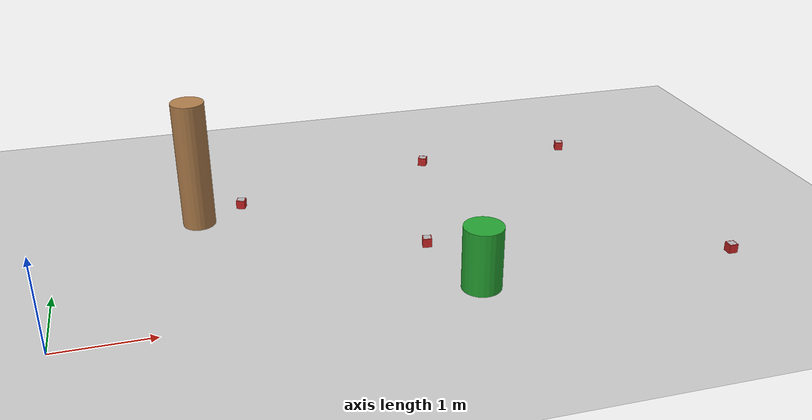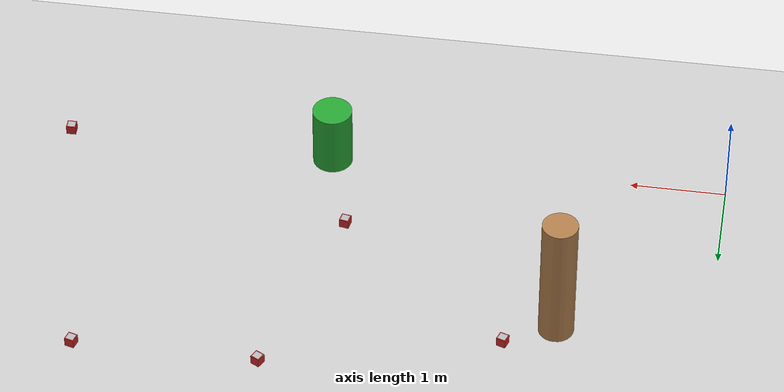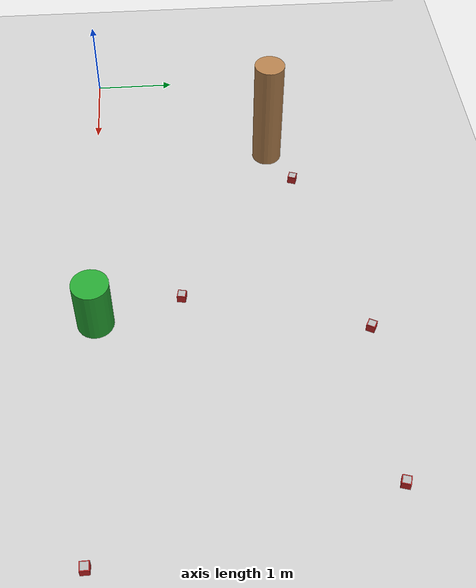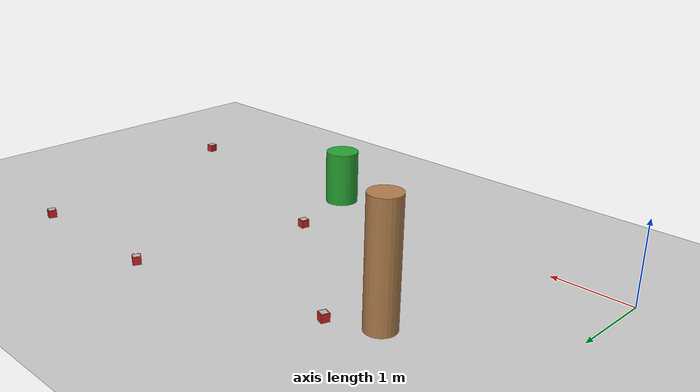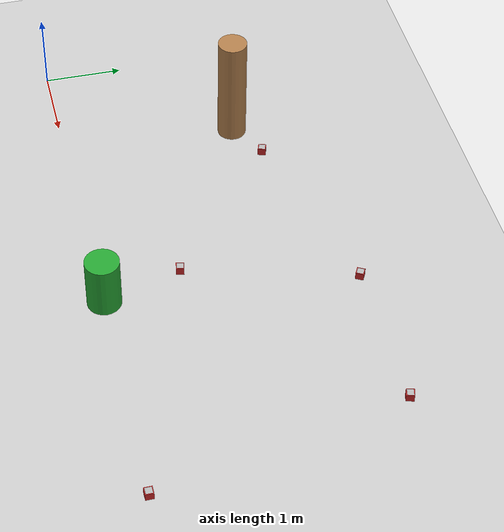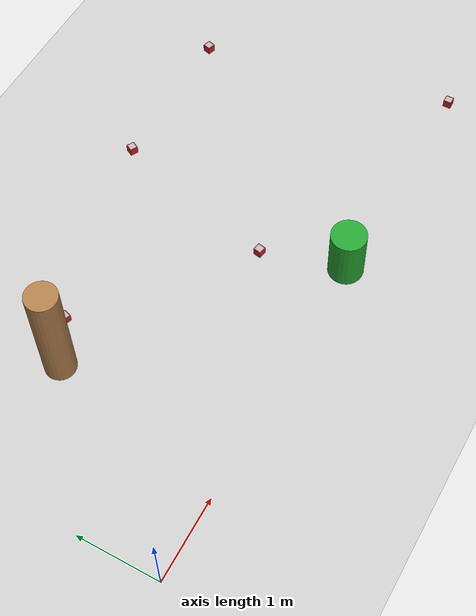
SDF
<sdf version="1.7">
 <world name="default">
  <model name="ground_plane">
   <static>1</static>
   <link name="link">
    <collision name="collision">
     <geometry><plane><normal>0 0 1</normal><size>100 100</size></plane></geometry>
     <surface><friction><ode><mu>100</mu><mu2>50</mu2></ode></friction></surface>
    </collision>
    <visual name="visual">
     <cast_shadows>0</cast_shadows>
     <geometry><plane><normal>0 0 1</normal><size>100 100</size></plane></geometry>
     <material>
      <script><uri>file://media/materials/scripts/gazebo.material</uri><name>Gazebo/Grey</name></script>
     </material>
    </visual>
   </link>
  </model>
  <model name="construction_cone_4">
   <pose>1.54493 2.21479 0.728544 0 -0 1.2e-05</pose>
   <link name="link">
    <inertial>
     <mass>1</mass>
     <inertia><ixx>0.145833</ixx><ixy>0</ixy><ixz>0</ixz><iyy>0.145833</iyy><iyz>0</iyz><izz>0.125</izz></inertia>
    </inertial>
    <collision name="collision">
     <geometry><cylinder><radius>0.183096</radius><length>1.4571</length></cylinder></geometry>
    </collision>
    <visual name="visual">
     <geometry><cylinder><radius>0.183096</radius><length>1.4571</length></cylinder></geometry>
     <material>
      <script><name>Gazebo/Wood</name><uri>file://media/materials/scripts/gazebo.material</uri></script>
     </material>
    </visual>
   </link>
  </model>
  <model name="poly_1">
   <pose>7.00095 0.007533 0.049997 -2e-06 -6e-05 0.012681</pose>
   <static>1</static>
   <link name="poly_1_link">
    <inertial>
     <mass>0.7</mass>
     <inertia>
      <ixx>0.00016667</ixx>
      <ixy>0</ixy>
      <ixz>0</ixz>
      <iyy>0.00016667</iyy>
      <iyz>0</iyz>
      <izz>0.00016667</izz>
     </inertia>
    </inertial>
    <collision name="collision"><geometry><box><size>0.1 0.1 0.1</size></box></geometry></collision>
    <visual name="visual">
     <geometry><box><size>0.1 0.1 0.1</size></box></geometry>
     <material>
      <script><name>Gazebo/Red</name><uri>file://media/materials/scripts/gazebo.material</uri></script>
     </material>
    </visual>
   </link>
   <link name="tag1">
    <pose>0 0 0.051 0 -0 0</pose>
    <collision name="collision"><geometry><box><size>0.0825 0.0825 0.0001</size></box></geometry></collision>
    <visual name="visual">
     <cast_shadows>0</cast_shadows>
     <geometry><box><size>0.0825 0.0825 0.0001</size></box></geometry>
     <material>
      <script>
       <uri>model://artag/materials/scripts</uri>
       <uri>model://artag/materials/textures</uri>
       <name>material/artag1</name>
      </script>
     </material>
    </visual>
    <inertial>
     <inertia><ixx>0.0001</ixx><ixy>0</ixy><ixz>0</ixz><iyy>0.0001</iyy><iyz>0</iyz><izz>0.0001</izz></inertia>
     <mass>0.1</mass>
    </inertial>
   </link>
   <joint name="poly_1_tag1" type="fixed"><parent>poly_1_link</parent><child>tag1</child></joint>
  </model>
  <model name="place_table_g">
   <pose>4.16791 0.040706 0.345 0 -0 0</pose>
   <static>1</static>
   <link name="link">
    <inertial>
     <mass>1</mass>
     <inertia><ixx>0.145833</ixx><ixy>0</ixy><ixz>0</ixz><iyy>0.145833</iyy><iyz>0</iyz><izz>0.125</izz></inertia>
    </inertial>
    <collision name="collision">
     <geometry><cylinder><radius>0.21</radius><length>0.69</length></cylinder></geometry>
    </collision>
    <visual name="visual">
     <geometry><cylinder><radius>0.21</radius><length>0.69</length></cylinder></geometry>
     <material>
      <script><name>Gazebo/Green</name><uri>file://media/materials/scripts/gazebo.material</uri></script>
     </material>
    </visual>
   </link>
  </model>
  <model name="poly_9">
   <pose>4.45588 3.10434 0.049996 2.4e-05 -5e-05 2.64577</pose>
   <static>1</static>
   <link name="poly_9_link">
    <inertial>
     <mass>0.7</mass>
     <inertia>
      <ixx>0.00016667</ixx>
      <ixy>0</ixy>
      <ixz>0</ixz>
      <iyy>0.00016667</iyy>
      <iyz>0</iyz>
      <izz>0.00016667</izz>
     </inertia>
    </inertial>
    <collision name="collision"><geometry><box><size>0.1 0.1 0.1</size></box></geometry></collision>
    <visual name="visual">
     <geometry><box><size>0.1 0.1 0.1</size></box></geometry>
     <material>
      <script><name>Gazebo/Red</name><uri>file://media/materials/scripts/gazebo.material</uri></script>
     </material>
    </visual>
   </link>
   <link name="tag9">
    <pose>0 0 0.051 0 -0 0</pose>
    <collision name="collision"><geometry><box><size>0.0825 0.0825 0.0001</size></box></geometry></collision>
    <visual name="visual">
     <cast_shadows>0</cast_shadows>
     <geometry><box><size>0.0825 0.0825 0.0001</size></box></geometry>
     <material>
      <script>
       <uri>model://artag/materials/scripts</uri>
       <uri>model://artag/materials/textures</uri>
       <name>material/artag9</name>
      </script>
     </material>
    </visual>
    <inertial>
     <inertia><ixx>0.0001</ixx><ixy>0</ixy><ixz>0</ixz><iyy>0.0001</iyy><iyz>0</iyz><izz>0.0001</izz></inertia>
     <mass>0.1</mass>
    </inertial>
   </link>
   <joint name="poly_9_tag9" type="fixed"><parent>poly_9_link</parent><child>tag9</child></joint>
  </model>
  <model name="poly_15">
   <pose>6.35805 3.11425 0.049997 0 -6.3e-05 2.85097</pose>
   <static>1</static>
   <link name="poly_15_link">
    <inertial>
     <mass>0.7</mass>
     <inertia>
      <ixx>0.00016667</ixx>
      <ixy>0</ixy>
      <ixz>0</ixz>
      <iyy>0.00016667</iyy>
      <iyz>0</iyz>
      <izz>0.00016667</izz>
     </inertia>
    </inertial>
    <collision name="collision"><geometry><box><size>0.1 0.1 0.1</size></box></geometry></collision>
    <visual name="visual">
     <geometry><box><size>0.1 0.1 0.1</size></box></geometry>
     <material>
      <script><name>Gazebo/Red</name><uri>file://media/materials/scripts/gazebo.material</uri></script>
     </material>
    </visual>
   </link>
   <link name="tag15">
    <pose>0 0 0.051 0 -0 0</pose>
    <collision name="collision"><geometry><box><size>0.0825 0.0825 0.0001</size></box></geometry></collision>
    <visual name="visual">
     <cast_shadows>0</cast_shadows>
     <geometry><box><size>0.0825 0.0825 0.0001</size></box></geometry>
     <material>
      <script>
       <uri>model://artag/materials/scripts</uri>
       <uri>model://artag/materials/textures</uri>
       <name>material/artag15</name>
      </script>
     </material>
    </visual>
    <inertial>
     <inertia><ixx>0.0001</ixx><ixy>0</ixy><ixz>0</ixz><iyy>0.0001</iyy><iyz>0</iyz><izz>0.0001</izz></inertia>
     <mass>0.1</mass>
    </inertial>
   </link>
   <joint name="poly_15_tag15" type="fixed"><parent>poly_15_link</parent><child>tag15</child></joint>
  </model>
  <model name="poly_5">
   <pose>2.05439 2.49627 0.049997 -6.2e-05 1e-06 -0.339649</pose>
   <static>1</static>
   <link name="poly_5_link">
    <inertial>
     <mass>0.7</mass>
     <inertia>
      <ixx>0.00016667</ixx>
      <ixy>0</ixy>
      <ixz>0</ixz>
      <iyy>0.00016667</iyy>
      <iyz>0</iyz>
      <izz>0.00016667</izz>
     </inertia>
    </inertial>
    <collision name="collision"><geometry><box><size>0.1 0.1 0.1</size></box></geometry></collision>
    <visual name="visual">
     <geometry><box><size>0.1 0.1 0.1</size></box></geometry>
     <material>
      <script><name>Gazebo/Red</name><uri>file://media/materials/scripts/gazebo.material</uri></script>
     </material>
    </visual>
   </link>
   <link name="tag5">
    <pose>0 0 0.051 0 -0 0</pose>
    <collision name="collision"><geometry><box><size>0.0825 0.0825 0.0003</size></box></geometry></collision>
    <visual name="visual">
     <cast_shadows>0</cast_shadows>
     <geometry><box><size>0.0825 0.0825 0.0003</size></box></geometry>
     <material>
      <script>
       <uri>model://artag/materials/scripts</uri>
       <uri>model://artag/materials/textures</uri>
       <name>material/artag5</name>
      </script>
     </material>
    </visual>
    <inertial>
     <inertia><ixx>0.0001</ixx><ixy>0</ixy><ixz>0</ixz><iyy>0.0001</iyy><iyz>0</iyz><izz>0.0001</izz></inertia>
     <mass>0.1</mass>
    </inertial>
   </link>
   <joint name="poly_5_tag5" type="fixed">
    <parent>poly_5_link</parent>
    <child>tag5</child>
    <axis>
     <xyz>0 1 0</xyz>
     <limit><lower>-1e+16</lower><upper>1e+16</upper></limit>
     <use_parent_model_frame>0</use_parent_model_frame>
    </axis>
   </joint>
  </model>
  <model name="poly_6">
   <pose>3.88625 1.01625 0.049997 -0 -6.1e-05 -0.196911</pose>
   <static>1</static>
   <link name="poly_6_link">
    <inertial>
     <mass>0.7</mass>
     <inertia>
      <ixx>0.00016667</ixx>
      <ixy>0</ixy>
      <ixz>0</ixz>
      <iyy>0.00016667</iyy>
      <iyz>0</iyz>
      <izz>0.00016667</izz>
     </inertia>
    </inertial>
    <collision name="collision"><geometry><box><size>0.1 0.1 0.1</size></box></geometry></collision>
    <visual name="visual">
     <geometry><box><size>0.1 0.1 0.1</size></box></geometry>
     <material>
      <script><name>Gazebo/Red</name><uri>file://media/materials/scripts/gazebo.material</uri></script>
     </material>
    </visual>
   </link>
   <link name="tag6">
    <pose>0 0 0.051 0 -0 0</pose>
    <collision name="collision"><geometry><box><size>0.0825 0.0825 0.0001</size></box></geometry></collision>
    <visual name="visual">
     <cast_shadows>0</cast_shadows>
     <geometry><box><size>0.0825 0.0825 0.0001</size></box></geometry>
     <material>
      <script>
       <uri>model://artag/materials/scripts</uri>
       <uri>model://artag/materials/textures</uri>
       <name>material/artag6</name>
      </script>
     </material>
    </visual>
    <inertial>
     <inertia><ixx>0.0001</ixx><ixy>0</ixy><ixz>0</ixz><iyy>0.0001</iyy><iyz>0</iyz><izz>0.0001</izz></inertia>
     <mass>0.1</mass>
    </inertial>
   </link>
   <joint name="poly_6_tag6" type="fixed">
    <parent>poly_6_link</parent>
    <child>tag6</child>
    <axis>
     <xyz>0 1 0</xyz>
     <limit><lower>-1e+16</lower><upper>1e+16</upper></limit>
     <use_parent_model_frame>0</use_parent_model_frame>
    </axis>
   </joint>
  </model>
 </world>
</sdf>
